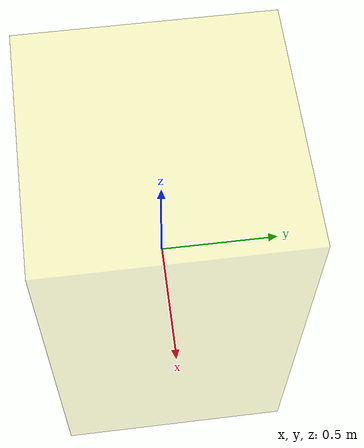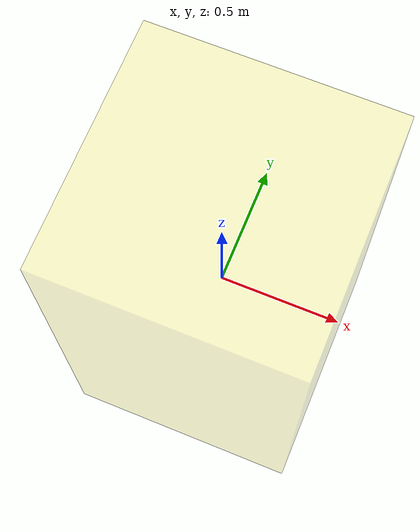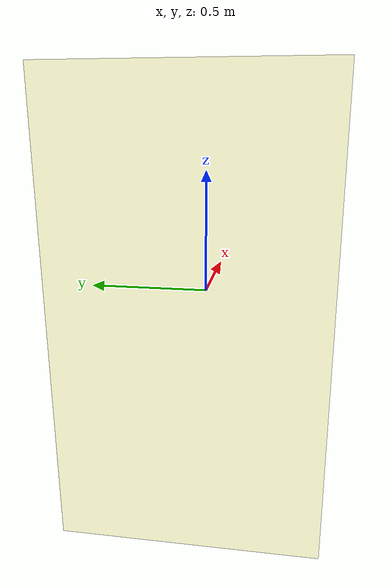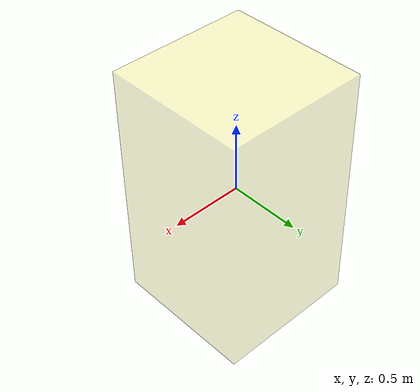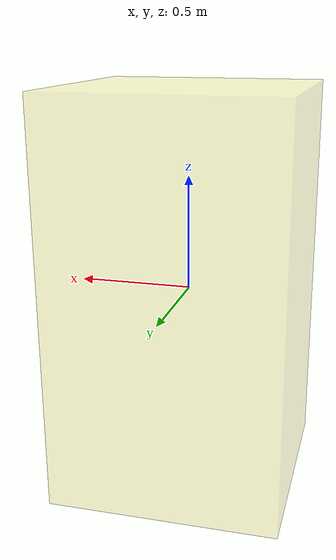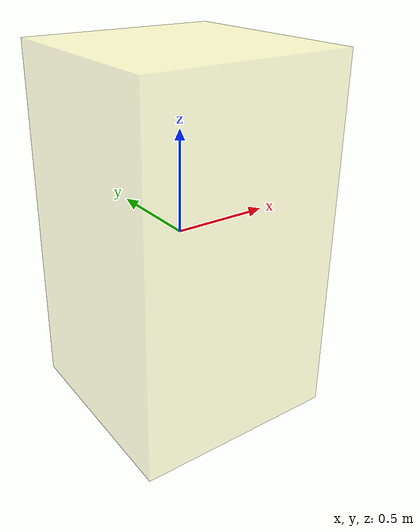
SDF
<?xml version='1.0'?>
<sdf version='1.5'>
  <model name='RegionEventBox'>
    <static>1</static>
    <pose>0 0 0 0 0 0</pose>
    <link name='link'>
      <visual name='visual'>
        <transparency>0.75</transparency>
        <geometry>
          <box>
            <size>1 1 1.75</size>
          </box>
        </geometry>
        <material>
          <script>
            <uri>file://media/materials/scripts/gazebo.material</uri>
            <name>Gazebo/Yellow</name>
          </script>
        </material>
      </visual>
      <self_collide>0</self_collide>
      <kinematic>0</kinematic>
    </link>
    <plugin name="region_event_box" filename="libRegionEventBoxPlugin.so">
      <event>
        <name>model_in_region_event_box</name>
        <type>inclusion</type>
        <active>true</active>
      </event>
    </plugin>
  </model>
</sdf>
